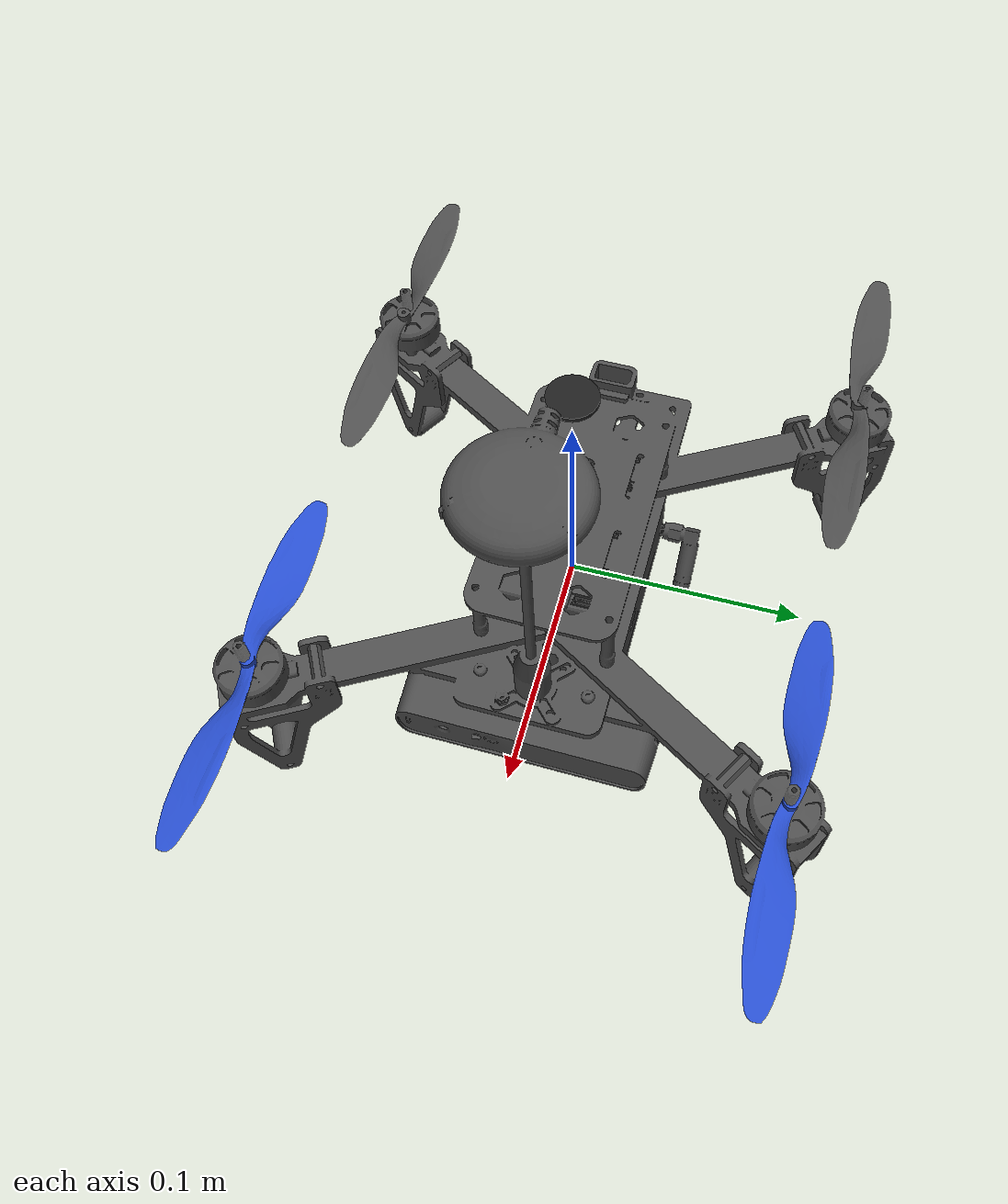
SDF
<sdf version='1.6'>
  <model name='px4vision'>
    <link name='base_link'>
      <pose>0 0 0 0 -0 0</pose>
      <inertial>
        <pose>0 0 0 0 -0 0</pose>
        <mass>1.5</mass>
        <inertia>
          <ixx>0.029125</ixx>
          <ixy>0</ixy>
          <ixz>0</ixz>
          <iyy>0.029125</iyy>
          <iyz>0</iyz>
          <izz>0.055225</izz>
        </inertia>
      </inertial>
      <collision name='base_link_inertia_collision'>
        <pose>0 0 0 0 -0 0</pose>
        <geometry>
          <box>
            <size>0.47 0.47 0.11</size>
          </box>
        </geometry>
        <surface>
          <contact>
            <ode>
              <min_depth>0.001</min_depth>
              <max_vel>0</max_vel>
            </ode>
          </contact>
          <friction>
            <ode/>
          </friction>
        </surface>
      </collision>
      <visual name='base_link_inertia_visual'>
        <pose>0 0 0 1.5707 0 -0.01</pose>
        <geometry>
          <mesh>
            <scale>0.001 0.001 0.001</scale>
            <uri>model://px4vision/meshes/body.dae</uri>
          </mesh>
        </geometry>
        <material>
          <script>
            <name>Gazebo/DarkGrey</name>
            <uri>file://media/materials/scripts/gazebo.material</uri>
          </script>
        </material>
      </visual>
      <gravity>1</gravity>
      <velocity_decay/>
    </link>
    <link name='/imu_link'>
      <pose>0 0 0 0 -0 0</pose>
      <inertial>
        <pose>0 0 0 0 -0 0</pose>
        <mass>0.015</mass>
        <inertia>
          <ixx>1e-05</ixx>
          <ixy>0</ixy>
          <ixz>0</ixz>
          <iyy>1e-05</iyy>
          <iyz>0</iyz>
          <izz>1e-05</izz>
        </inertia>
      </inertial>
    </link>
    <joint name='/imu_joint' type='revolute'>
      <child>/imu_link</child>
      <parent>base_link</parent>
      <axis>
        <xyz>1 0 0</xyz>
        <limit>
          <lower>0</lower>
          <upper>0</upper>
          <effort>0</effort>
          <velocity>0</velocity>
        </limit>
        <dynamics>
          <spring_reference>0</spring_reference>
          <spring_stiffness>0</spring_stiffness>
        </dynamics>
        <use_parent_model_frame>1</use_parent_model_frame>
      </axis>
    </joint>
    <link name='rotor_0'>
      <pose>0.0935 -0.107 0.03 0 -0 0</pose>
      <inertial>
        <pose>0 0 0 0 -0 0</pose>
        <mass>0.005</mass>
        <inertia>
          <ixx>9.75e-07</ixx>
          <ixy>0</ixy>
          <ixz>0</ixz>
          <iyy>0.000273104</iyy>
          <iyz>0</iyz>
          <izz>0.000274004</izz>
        </inertia>
      </inertial>
      <collision name='rotor_0_collision'>
        <pose>0 0 0 0 -0 0</pose>
        <geometry>
          <cylinder>
            <length>0.005</length>
            <radius>0.128</radius>
          </cylinder>
        </geometry>
        <surface>
          <contact>
            <ode/>
          </contact>
          <friction>
            <ode/>
          </friction>
        </surface>
      </collision>
      <visual name='rotor_0_visual'>
        <pose>0 0 0 0 -0 0</pose>
        <geometry>
          <mesh>
            <scale>0.6 0.6 0.6</scale>
            <uri>model://iris/meshes/iris_prop_ccw.dae</uri>
          </mesh>
        </geometry>
        <material>
          <script>
            <name>Gazebo/Blue</name>
            <uri>file://media/materials/scripts/gazebo.material</uri>
          </script>
        </material>
      </visual>
      <gravity>1</gravity>
      <velocity_decay/>
    </link>
    <joint name='rotor_0_joint' type='revolute'>
      <child>rotor_0</child>
      <parent>base_link</parent>
      <axis>
        <xyz>0 0 1</xyz>
        <limit>
          <lower>-1e+16</lower>
          <upper>1e+16</upper>
        </limit>
        <dynamics>
          <spring_reference>0</spring_reference>
          <spring_stiffness>0</spring_stiffness>
        </dynamics>
        <use_parent_model_frame>1</use_parent_model_frame>
      </axis>
    </joint>
    <link name='rotor_1'>
      <pose>-0.0935 0.107 0.03 0 -0 0</pose>
      <inertial>
        <pose>0 0 0 0 -0 0</pose>
        <mass>0.005</mass>
        <inertia>
          <ixx>9.75e-07</ixx>
          <ixy>0</ixy>
          <ixz>0</ixz>
          <iyy>0.000273104</iyy>
          <iyz>0</iyz>
          <izz>0.000274004</izz>
        </inertia>
      </inertial>
      <collision name='rotor_1_collision'>
        <pose>0 0 0 0 -0 0</pose>
        <geometry>
          <cylinder>
            <length>0.005</length>
            <radius>0.128</radius>
          </cylinder>
        </geometry>
        <surface>
          <contact>
            <ode/>
          </contact>
          <friction>
            <ode/>
          </friction>
        </surface>
      </collision>
      <visual name='rotor_1_visual'>
        <pose>0 0 0 0 -0 0</pose>
        <geometry>
          <mesh>
            <scale>0.6 0.6 0.6</scale>
            <uri>model://iris/meshes/iris_prop_ccw.dae</uri>
          </mesh>
        </geometry>
        <material>
          <script>
            <name>Gazebo/DarkGrey</name>
            <uri>file://media/materials/scripts/gazebo.material</uri>
          </script>
        </material>
      </visual>
      <gravity>1</gravity>
      <velocity_decay/>
    </link>
    <joint name='rotor_1_joint' type='revolute'>
      <child>rotor_1</child>
      <parent>base_link</parent>
      <axis>
        <xyz>0 0 1</xyz>
        <limit>
          <lower>-1e+16</lower>
          <upper>1e+16</upper>
        </limit>
        <dynamics>
          <spring_reference>0</spring_reference>
          <spring_stiffness>0</spring_stiffness>
        </dynamics>
        <use_parent_model_frame>1</use_parent_model_frame>
      </axis>
    </joint>
    <link name='rotor_2'>
      <pose>0.0935 0.107 0.03 0 -0 0</pose>
      <inertial>
        <pose>0 0 0 0 -0 0</pose>
        <mass>0.005</mass>
        <inertia>
          <ixx>9.75e-07</ixx>
          <ixy>0</ixy>
          <ixz>0</ixz>
          <iyy>0.000273104</iyy>
          <iyz>0</iyz>
          <izz>0.000274004</izz>
        </inertia>
      </inertial>
      <collision name='rotor_2_collision'>
        <pose>0 0 0 0 -0 0</pose>
        <geometry>
          <cylinder>
            <length>0.005</length>
            <radius>0.128</radius>
          </cylinder>
        </geometry>
        <surface>
          <contact>
            <ode/>
          </contact>
          <friction>
            <ode/>
          </friction>
        </surface>
      </collision>
      <visual name='rotor_2_visual'>
        <pose>0 0 0 0 -0 0</pose>
        <geometry>
          <mesh>
            <scale>0.6 0.6 0.6</scale>
            <uri>model://iris/meshes/iris_prop_cw.dae</uri>
          </mesh>
        </geometry>
        <material>
          <script>
            <name>Gazebo/Blue</name>
            <uri>file://media/materials/scripts/gazebo.material</uri>
          </script>
        </material>
      </visual>
      <gravity>1</gravity>
      <velocity_decay/>
    </link>
    <joint name='rotor_2_joint' type='revolute'>
      <child>rotor_2</child>
      <parent>base_link</parent>
      <axis>
        <xyz>0 0 1</xyz>
        <limit>
          <lower>-1e+16</lower>
          <upper>1e+16</upper>
        </limit>
        <dynamics>
          <spring_reference>0</spring_reference>
          <spring_stiffness>0</spring_stiffness>
        </dynamics>
        <use_parent_model_frame>1</use_parent_model_frame>
      </axis>
    </joint>
    <link name='rotor_3'>
      <pose>-0.0935 -0.107 0.03 0 -0 0</pose>
      <inertial>
        <pose>0 0 0 0 -0 0</pose>
        <mass>0.005</mass>
        <inertia>
          <ixx>9.75e-07</ixx>
          <ixy>0</ixy>
          <ixz>0</ixz>
          <iyy>0.000273104</iyy>
          <iyz>0</iyz>
          <izz>0.000274004</izz>
        </inertia>
      </inertial>
      <collision name='rotor_3_collision'>
        <pose>0 0 0 0 -0 0</pose>
        <geometry>
          <cylinder>
            <length>0.005</length>
            <radius>0.128</radius>
          </cylinder>
        </geometry>
        <surface>
          <contact>
            <ode/>
          </contact>
          <friction>
            <ode/>
          </friction>
        </surface>
      </collision>
      <visual name='rotor_3_visual'>
        <pose>0 0 0 0 -0 0</pose>
        <geometry>
          <mesh>
            <scale>0.6 0.6 0.6</scale>
            <uri>model://iris/meshes/iris_prop_cw.dae</uri>
          </mesh>
        </geometry>
        <material>
          <script>
            <name>Gazebo/DarkGrey</name>
            <uri>file://media/materials/scripts/gazebo.material</uri>
          </script>
        </material>
      </visual>
      <gravity>1</gravity>
      <velocity_decay/>
    </link>
    <joint name='rotor_3_joint' type='revolute'>
      <child>rotor_3</child>
      <parent>base_link</parent>
      <axis>
        <xyz>0 0 1</xyz>
        <limit>
          <lower>-1e+16</lower>
          <upper>1e+16</upper>
        </limit>
        <dynamics>
          <spring_reference>0</spring_reference>
          <spring_stiffness>0</spring_stiffness>
        </dynamics>
        <use_parent_model_frame>1</use_parent_model_frame>
      </axis>
    </joint>
    <include>
      <uri>model://gps</uri>
      <pose>0 0 0.12 0 0 0</pose>
      <name>gps</name>
    </include>
    <joint name='gps_joint' type='fixed'>
      <child>gps::link</child>
      <parent>base_link</parent>
    </joint>
    <plugin name='rosbag' filename='libgazebo_multirotor_base_plugin.so'>
      <robotNamespace/>
      <linkName>base_link</linkName>
      <rotorVelocitySlowdownSim>10</rotorVelocitySlowdownSim>
    </plugin>
    <plugin name='front_right_motor_model' filename='libgazebo_motor_model.so'>
      <robotNamespace/>
      <jointName>rotor_0_joint</jointName>
      <linkName>rotor_0</linkName>
      <turningDirection>ccw</turningDirection>
      <timeConstantUp>0.0125</timeConstantUp>
      <timeConstantDown>0.025</timeConstantDown>
      <maxRotVelocity>1100</maxRotVelocity>
      <motorConstant>8.54858e-06</motorConstant>
      <momentConstant>0.06</momentConstant>
      <commandSubTopic>/gazebo/command/motor_speed</commandSubTopic>
      <motorNumber>0</motorNumber>
      <rotorDragCoefficient>0.000806428</rotorDragCoefficient>
      <rollingMomentCoefficient>1e-06</rollingMomentCoefficient>
      <motorSpeedPubTopic>/motor_speed/0</motorSpeedPubTopic>
      <rotorVelocitySlowdownSim>10</rotorVelocitySlowdownSim>
    </plugin>
    <plugin name='back_left_motor_model' filename='libgazebo_motor_model.so'>
      <robotNamespace/>
      <jointName>rotor_1_joint</jointName>
      <linkName>rotor_1</linkName>
      <turningDirection>ccw</turningDirection>
      <timeConstantUp>0.0125</timeConstantUp>
      <timeConstantDown>0.025</timeConstantDown>
      <maxRotVelocity>1100</maxRotVelocity>
      <motorConstant>8.54858e-06</motorConstant>
      <momentConstant>0.06</momentConstant>
      <commandSubTopic>/gazebo/command/motor_speed</commandSubTopic>
      <motorNumber>1</motorNumber>
      <rotorDragCoefficient>0.000806428</rotorDragCoefficient>
      <rollingMomentCoefficient>1e-06</rollingMomentCoefficient>
      <motorSpeedPubTopic>/motor_speed/1</motorSpeedPubTopic>
      <rotorVelocitySlowdownSim>10</rotorVelocitySlowdownSim>
    </plugin>
    <plugin name='front_left_motor_model' filename='libgazebo_motor_model.so'>
      <robotNamespace/>
      <jointName>rotor_2_joint</jointName>
      <linkName>rotor_2</linkName>
      <turningDirection>cw</turningDirection>
      <timeConstantUp>0.0125</timeConstantUp>
      <timeConstantDown>0.025</timeConstantDown>
      <maxRotVelocity>1100</maxRotVelocity>
      <motorConstant>8.54858e-06</motorConstant>
      <momentConstant>0.06</momentConstant>
      <commandSubTopic>/gazebo/command/motor_speed</commandSubTopic>
      <motorNumber>2</motorNumber>
      <rotorDragCoefficient>0.000806428</rotorDragCoefficient>
      <rollingMomentCoefficient>1e-06</rollingMomentCoefficient>
      <motorSpeedPubTopic>/motor_speed/2</motorSpeedPubTopic>
      <rotorVelocitySlowdownSim>10</rotorVelocitySlowdownSim>
    </plugin>
    <plugin name='back_right_motor_model' filename='libgazebo_motor_model.so'>
      <robotNamespace/>
      <jointName>rotor_3_joint</jointName>
      <linkName>rotor_3</linkName>
      <turningDirection>cw</turningDirection>
      <timeConstantUp>0.0125</timeConstantUp>
      <timeConstantDown>0.025</timeConstantDown>
      <maxRotVelocity>1100</maxRotVelocity>
      <motorConstant>8.54858e-06</motorConstant>
      <momentConstant>0.06</momentConstant>
      <commandSubTopic>/gazebo/command/motor_speed</commandSubTopic>
      <motorNumber>3</motorNumber>
      <rotorDragCoefficient>0.000806428</rotorDragCoefficient>
      <rollingMomentCoefficient>1e-06</rollingMomentCoefficient>
      <motorSpeedPubTopic>/motor_speed/3</motorSpeedPubTopic>
      <rotorVelocitySlowdownSim>10</rotorVelocitySlowdownSim>
    </plugin>
    <plugin name='groundtruth_plugin' filename='libgazebo_groundtruth_plugin.so'>
      <robotNamespace/>
    </plugin>
    <plugin name='magnetometer_plugin' filename='libgazebo_magnetometer_plugin.so'>
      <robotNamespace/>
      <pubRate>20</pubRate>
      <noiseDensity>0.0004</noiseDensity>
      <randomWalk>6.4e-06</randomWalk>
      <biasCorrelationTime>600</biasCorrelationTime>
      <magTopic>/mag</magTopic>
    </plugin>
    <plugin name='barometer_plugin' filename='libgazebo_barometer_plugin.so'>
      <robotNamespace/>
      <pubRate>10</pubRate>
      <baroTopic>/baro</baroTopic>
    </plugin>
    <plugin name='mavlink_interface' filename='libgazebo_mavlink_interface.so'>
      <robotNamespace/>
      <imuSubTopic>/imu</imuSubTopic>
      <gpsSubTopic>/gps</gpsSubTopic>
      <magSubTopic>/mag</magSubTopic>
      <baroSubTopic>/baro</baroSubTopic>
      <mavlink_addr>INADDR_ANY</mavlink_addr>
      <mavlink_udp_port>14560</mavlink_udp_port>
      <mavlink_tcp_port>4560</mavlink_tcp_port>
      <serialEnabled>0</serialEnabled>
      <serialDevice>/dev/ttyACM0</serialDevice>
      <baudRate>921600</baudRate>
      <qgc_addr>INADDR_ANY</qgc_addr>
      <qgc_udp_port>14550</qgc_udp_port>
      <sdk_addr>INADDR_ANY</sdk_addr>
      <sdk_udp_port>14540</sdk_udp_port>
      <hil_mode>0</hil_mode>
      <hil_state_level>0</hil_state_level>
      <send_vision_estimation>1</send_vision_estimation>
      <send_odometry>0</send_odometry>
      <enable_lockstep>1</enable_lockstep>
      <use_tcp>1</use_tcp>
      <motorSpeedCommandPubTopic>/gazebo/command/motor_speed</motorSpeedCommandPubTopic>
      <control_channels>
        <channel name='rotor1'>
          <input_index>0</input_index>
          <input_offset>0</input_offset>
          <input_scaling>1000</input_scaling>
          <zero_position_disarmed>0</zero_position_disarmed>
          <zero_position_armed>100</zero_position_armed>
          <joint_control_type>velocity</joint_control_type>
        </channel>
        <channel name='rotor2'>
          <input_index>1</input_index>
          <input_offset>0</input_offset>
          <input_scaling>1000</input_scaling>
          <zero_position_disarmed>0</zero_position_disarmed>
          <zero_position_armed>100</zero_position_armed>
          <joint_control_type>velocity</joint_control_type>
        </channel>
        <channel name='rotor3'>
          <input_index>2</input_index>
          <input_offset>0</input_offset>
          <input_scaling>1000</input_scaling>
          <zero_position_disarmed>0</zero_position_disarmed>
          <zero_position_armed>100</zero_position_armed>
          <joint_control_type>velocity</joint_control_type>
        </channel>
        <channel name='rotor4'>
          <input_index>3</input_index>
          <input_offset>0</input_offset>
          <input_scaling>1000</input_scaling>
          <zero_position_disarmed>0</zero_position_disarmed>
          <zero_position_armed>100</zero_position_armed>
          <joint_control_type>velocity</joint_control_type>
        </channel>
        <channel name='rotor5'>
          <input_index>4</input_index>
          <input_offset>1</input_offset>
          <input_scaling>324.6</input_scaling>
          <zero_position_disarmed>0</zero_position_disarmed>
          <zero_position_armed>0</zero_position_armed>
          <joint_control_type>velocity</joint_control_type>
          <joint_control_pid>
            <p>0.1</p>
            <i>0</i>
            <d>0</d>
            <iMax>0.0</iMax>
            <iMin>0.0</iMin>
            <cmdMax>2</cmdMax>
            <cmdMin>-2</cmdMin>
          </joint_control_pid>
          <joint_name>zephyr_delta_wing::propeller_joint</joint_name>
        </channel>
        <channel name='rotor6'>
          <input_index>5</input_index>
          <input_offset>0</input_offset>
          <input_scaling>0.524</input_scaling>
          <zero_position_disarmed>0</zero_position_disarmed>
          <zero_position_armed>0</zero_position_armed>
          <joint_control_type>position</joint_control_type>
          <joint_name>zephyr_delta_wing::flap_left_joint</joint_name>
          <joint_control_pid>
            <p>10.0</p>
            <i>0</i>
            <d>0</d>
            <iMax>0</iMax>
            <iMin>0</iMin>
            <cmdMax>20</cmdMax>
            <cmdMin>-20</cmdMin>
          </joint_control_pid>
        </channel>
        <channel name='rotor7'>
          <input_index>6</input_index>
          <input_offset>0</input_offset>
          <input_scaling>0.524</input_scaling>
          <zero_position_disarmed>0</zero_position_disarmed>
          <zero_position_armed>0</zero_position_armed>
          <joint_control_type>position</joint_control_type>
          <joint_name>zephyr_delta_wing::flap_right_joint</joint_name>
          <joint_control_pid>
            <p>10.0</p>
            <i>0</i>
            <d>0</d>
            <iMax>0</iMax>
            <iMin>0</iMin>
            <cmdMax>20</cmdMax>
            <cmdMin>-20</cmdMin>
          </joint_control_pid>
        </channel>
        <channel name='rotor8'>
          <input_index>7</input_index>
          <input_offset>0</input_offset>
          <input_scaling>0.524</input_scaling>
          <zero_position_disarmed>0</zero_position_disarmed>
          <zero_position_armed>0</zero_position_armed>
          <joint_control_type>position</joint_control_type>
        </channel>
      </control_channels>
    </plugin>
    <static>0</static>
    <plugin name='rotors_gazebo_imu_plugin' filename='libgazebo_imu_plugin.so'>
      <robotNamespace/>
      <linkName>/imu_link</linkName>
      <imuTopic>/imu</imuTopic>
    </plugin>
    <link name="depthcamera_link">
      <pose>0.08 0.0 -0.01 0 0 0</pose>
      <inertial>
        <pose>0.01 0.025 0.025 0 0 0</pose>
        <mass>0.01</mass>
        <inertia>
          <ixx>4.15e-6</ixx>
          <ixy>0</ixy>
          <ixz>0</ixz>
          <iyy>2.407e-6</iyy>
          <iyz>0</iyz>
          <izz>2.407e-6</izz>
        </inertia>
      </inertial>
      <sensor name="depth_camera" type="depth">
        <update_rate>20</update_rate>
        <camera>
          <horizontal_fov>1.02974</horizontal_fov>
          <image>
            <format>R8G8B8</format>
            <width>64</width>
            <height>48</height>
          </image>
          <clip>
            <near>0.5</near>
            <far>18</far>
          </clip>
        </camera>
        <plugin filename="libgazebo_ros_openni_kinect.so" name="camera_controller">
          <cameraName>camera</cameraName>
          <alwaysOn>true</alwaysOn>
          <updateRate>20</updateRate>
          <pointCloudCutoff>0.2</pointCloudCutoff>
          <pointCloudCutoffMax>20</pointCloudCutoffMax>
          <imageTopicName>rgb/image_raw</imageTopicName>
          <cameraInfoTopicName>rgb/camera_info</cameraInfoTopicName>
          <depthImageTopicName>depth/image_raw</depthImageTopicName>
          <depthImageCameraInfoTopicName>depth/camera_info</depthImageCameraInfoTopicName>
          <pointCloudTopicName>depth/points</pointCloudTopicName>
          <frameName>camera_link</frameName>
          <distortion_k1>0.0</distortion_k1>
          <distortion_k2>0.0</distortion_k2>
          <distortion_k3>0.0</distortion_k3>
          <distortion_t1>0.0</distortion_t1>
          <distortion_t2>0.0</distortion_t2>
        </plugin>
      </sensor>
    </link>
    <joint name="depth_camera_joint" type="revolute">
      <child>depthcamera_link</child>
      <parent>base_link</parent>
      <axis>
        <xyz>0 0 1</xyz>
        <limit>
          <upper>0</upper>
          <lower>0</lower>
        </limit>
      </axis>
    </joint>
  </model>
</sdf>

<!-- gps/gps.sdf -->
<sdf version="1.6">
  <model name="gps">
    <link name="link">
      <pose>0 0 0 0 0 0</pose>
      <inertial>
        <pose>0 0 0 0 0 0</pose>
        <mass>0.015</mass>
        <inertia>
          <ixx>1e-05</ixx>
          <ixy>0</ixy>
          <ixz>0</ixz>
          <iyy>1e-05</iyy>
          <iyz>0</iyz>
          <izz>1e-05</izz>
        </inertia>
      </inertial>
      <visual name="visual">
        <geometry>
          <cylinder>
            <radius>0.01</radius>
            <length>0.002</length>
          </cylinder>
        </geometry>
        <material>
          <script>
            <name>Gazebo/Black</name>
          </script>
        </material>
      </visual>
      <sensor name="gps" type="gps">
        <pose>0 0 0 0 0 0</pose>
        <update_rate>5.0</update_rate>
        <always_on>true</always_on>
        <visualize>false</visualize>
        <!-- GpsSensor noise currently not used -->
        <plugin name="gps_plugin" filename="libgazebo_geocoordinate_gps_plugin.so">
          <robotNamespace></robotNamespace>
          <gpsNoise>true</gpsNoise>
          <gpsXYRandomWalk>2.0</gpsXYRandomWalk>
          <gpsZRandomWalk>4.0</gpsZRandomWalk>
          <gpsXYNoiseDensity>2.0e-4</gpsXYNoiseDensity>
          <gpsZNoiseDensity>4.0e-4</gpsZNoiseDensity>
          <gpsVXYNoiseDensity>0.2</gpsVXYNoiseDensity>
          <gpsVZNoiseDensity>0.4</gpsVZNoiseDensity>
        </plugin>
      </sensor>
    </link>
  </model>
</sdf>
